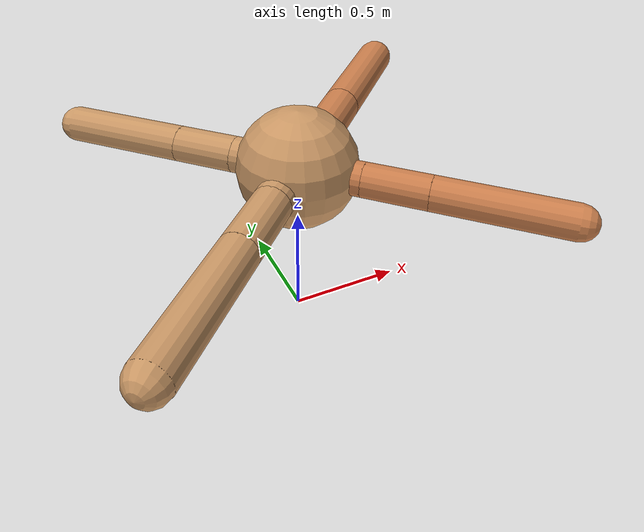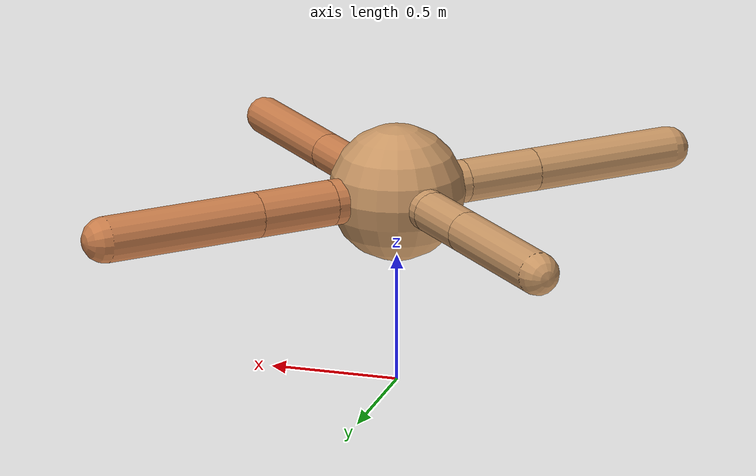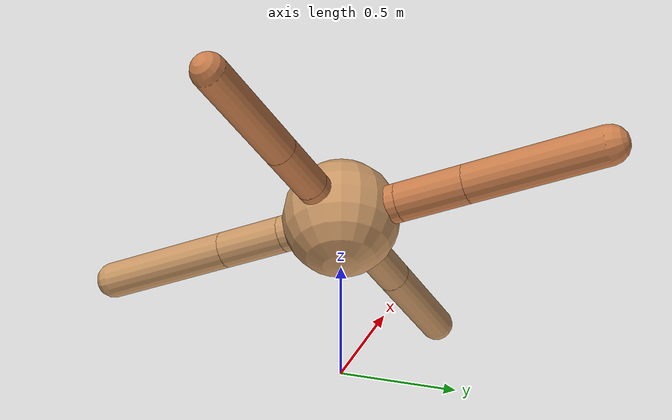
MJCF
<?xml version="1.0" ?>
<mujoco model="ant">

	<compiler angle="degree" coordinate="local" inertiafromgeom="true"/>

	<option integrator="RK4" timestep="0.01"/>

	<custom>

		<numeric data="0.0 0.0 0.55 1.0 0.0 0.0 0.0 0.0 1.0 0.0 -1.0 0.0 -1.0 0.0 1.0" name="init_qpos"/>

	</custom>

	<default>

		<joint armature="1" damping="1" limited="true"/>

		<geom conaffinity="0" condim="3" density="5.0" friction="1.5 0.1 0.1" margin="0.01" rgba="0.8 0.6 0.4 1"/>

	</default>

	<worldbody>

		<body name="torso" pos="0 0 0.75">

			<geom name="torso_geom" pos="0 0 0" size="0.25880034218662673" type="sphere"/>

			<!--joint armature="0" damping="0" limited="false" margin="0.01" name="root" pos="0 0 0" type="free"/-->

			<body name="front_left_leg" pos="0 0 0">

				<geom fromto="0 0 0 0.2 0.2 0" name="aux_1_geom" size="0.08648991215726091" type="capsule" rgba=".8 .5 .3 1"/>

				<body name="aux_1" pos="0.2 0.2 0">

					<joint axis="0 0 1" name="hip_1" pos="0.0 0.0 0.0" range="-40 40" type="hinge"/>

					<geom fromto="0 0 0 0.21678120824398814 0.21678120824398814 0" name="left_leg_geom" size="0.08648991215726091" type="capsule" rgba=".8 .5 .3 1"/>

					<body pos="0.21678120824398814 0.21678120824398814 0" name="front_left_foot">

						<joint axis="-1 1 0" name="ankle_1" pos="0.0 0.0 0.0" range="30 100" type="hinge"/>

						<geom fromto="0 0 0 0.4335624164879763 0.4335624164879763 0" name="left_ankle_geom" size="0.08648991215726091" type="capsule" rgba=".8 .5 .3 1"/>

					</body>

				</body>

			</body>

			<body name="front_right_leg" pos="0 0 0">

				<geom fromto="0 0 0 -0.2 0.2 0" name="aux_2_geom" size="0.07860943543324143" type="capsule"/>

				<body name="aux_2" pos="-0.2 0.2 0">

					<joint axis="0 0 1" name="hip_2" pos="0.0 0.0 0.0" range="-40 40" type="hinge"/>

					<geom fromto="0 0 0 -0.18462634612327164 0.18462634612327164 0" name="right_leg_geom" size="0.07860943543324143" type="capsule"/>

					<body pos="-0.18462634612327164 0.18462634612327164 0" name="front_right_foot">

						<joint axis="1 1 0" name="ankle_2" pos="0.0 0.0 0.0" range="-100 -30" type="hinge"/>

						<geom fromto="0 0 0 -0.3692526922465433 0.3692526922465433 0" name="right_ankle_geom" size="0.07860943543324143" type="capsule"/>

					</body>

				</body>

			</body>

			<body name="left_back_leg" pos="0 0 0">

				<geom fromto="0 0 0 -0.2 -0.2 0" name="aux_3_geom" size="0.08270636088104465" type="capsule"/>

				<body name="aux_3" pos="-0.2 -0.2 0">

					<joint axis="0 0 1" name="hip_3" pos="0.0 0.0 0.0" range="-40 40" type="hinge"/>

					<geom fromto="0 0 0 -0.2126608201099184 -0.2126608201099184 0" name="back_leg_geom" size="0.08270636088104465" type="capsule"/>

					<body pos="-0.2126608201099184 -0.2126608201099184 0" name="left_back_foot">

						<joint axis="-1 1 0" name="ankle_3" pos="0.0 0.0 0.0" range="-100 -30" type="hinge"/>

						<geom fromto="0 0 0 -0.4253216402198368 -0.4253216402198368 0" name="third_ankle_geom" size="0.08270636088104465" type="capsule"/>

					</body>

				</body>

			</body>

			<body name="right_back_leg" pos="0 0 0">

				<geom fromto="0 0 0 0.2 -0.2 0" name="aux_4_geom" size="0.07407901125058122" type="capsule" rgba=".8 .5 .3 1"/>

				<body name="aux_4" pos="0.2 -0.2 0">

					<joint axis="0 0 1" name="hip_4" pos="0.0 0.0 0.0" range="-40 40" type="hinge"/>

					<geom fromto="0 0 0 0.19434223073215903 -0.19434223073215903 0" name="rightback_leg_geom" size="0.07407901125058122" type="capsule" rgba=".8 .5 .3 1"/>

					<body pos="0.19434223073215903 -0.19434223073215903 0" name="right_back_foot">

						<joint axis="1 1 0" name="ankle_4" pos="0.0 0.0 0.0" range="30 100" type="hinge"/>

						<geom fromto="0 0 0 0.38868446146431807 -0.38868446146431807 0" name="fourth_ankle_geom" size="0.07407901125058122" type="capsule" rgba=".8 .5 .3 1"/>

					</body>

				</body>

			</body>

		</body>

	</worldbody>

	<actuator>

		<motor ctrllimited="true" ctrlrange="-1.0 1.0" joint="hip_4" gear="150"/>

		<motor ctrllimited="true" ctrlrange="-1.0 1.0" joint="ankle_4" gear="150"/>

		<motor ctrllimited="true" ctrlrange="-1.0 1.0" joint="hip_1" gear="150"/>

		<motor ctrllimited="true" ctrlrange="-1.0 1.0" joint="ankle_1" gear="150"/>

		<motor ctrllimited="true" ctrlrange="-1.0 1.0" joint="hip_2" gear="150"/>

		<motor ctrllimited="true" ctrlrange="-1.0 1.0" joint="ankle_2" gear="150"/>

		<motor ctrllimited="true" ctrlrange="-1.0 1.0" joint="hip_3" gear="150"/>

		<motor ctrllimited="true" ctrlrange="-1.0 1.0" joint="ankle_3" gear="150"/>

	</actuator>

</mujoco>
